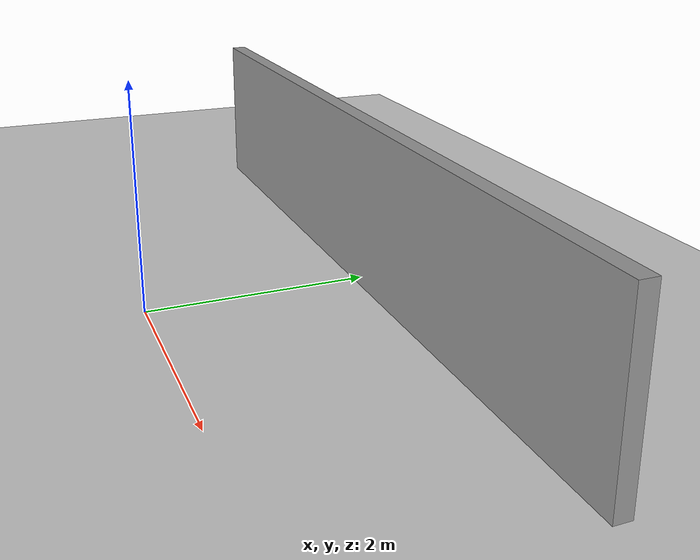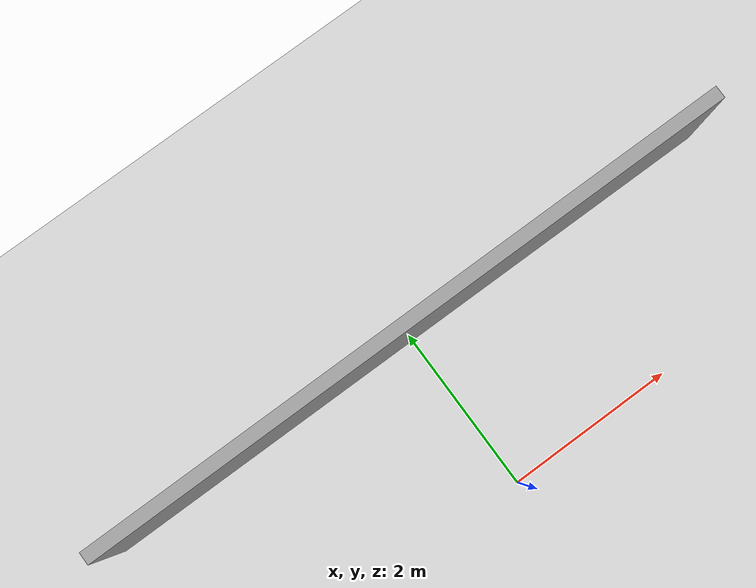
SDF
<sdf version="1.5">
 <world name="default">
  <light name="sun" type="directional">
   <pose>0 0 10 0 -0 0</pose>
   <diffuse>0.8 0.8 0.8 1</diffuse>
   <specular>0.1 0.1 0.1 1</specular>
   <attenuation>
    <range>1000</range>
    <constant>0.9</constant>
    <linear>0.01</linear>
    <quadratic>0.001</quadratic>
   </attenuation>
   <direction>-0.5 0.5 -1</direction>
  </light>
  <model name="ground_plane">
   <static>1</static>
   <link name="link">
    <collision name="collision">
     <geometry><plane><normal>0 0 1</normal><size>100 100</size></plane></geometry>
     <surface><friction><ode><mu>100</mu><mu2>50</mu2></ode></friction></surface>
    </collision>
    <visual name="visual">
     <cast_shadows>0</cast_shadows>
     <geometry><plane><normal>0 0 1</normal><size>100 100</size></plane></geometry>
     <material>
      <script><uri>file://media/materials/scripts/gazebo.material</uri><name>Gazebo/Grey</name></script>
     </material>
    </visual>
    <velocity_decay><linear>0</linear><angular>0</angular></velocity_decay>
   </link>
  </model>
  <physics type="ode">
   <max_step_size>0.001</max_step_size>
   <real_time_factor>1</real_time_factor>
   <real_time_update_rate>1000</real_time_update_rate>
   <gravity>0 0 -9.8</gravity>
   <magnetic_field>5.5645e-06 2.28758e-05 -4.23884e-05</magnetic_field>
  </physics>
  <scene><ambient>0.4 0.4 0.4 1</ambient><background>0.7 0.7 0.7 1</background><shadows>1</shadows></scene>
  <spherical_coordinates>
   <surface_model>EARTH_WGS84</surface_model>
   <latitude_deg>0</latitude_deg>
   <longitude_deg>0</longitude_deg>
   <elevation>0</elevation>
   <heading_deg>0</heading_deg>
  </spherical_coordinates>
  <model name="unit_box_1">
   <static>1</static>
   <pose>9.1e-05 2.00001 0.766115 -2.8e-05 8e-06 -2.7e-05</pose>
   <link name="unit_box_1::link">
    <inertial>
     <mass>1</mass>
     <inertia><ixx>1</ixx><ixy>0</ixy><ixz>0</ixz><iyy>1</iyy><iyz>0</iyz><izz>1</izz></inertia>
    </inertial>
    <collision name="collision"><geometry><box><size>7.71467 0.147739 1.53229</size></box></geometry></collision>
    <visual name="visual">
     <geometry><box><size>7.71467 0.147739 1.53229</size></box></geometry>
     <material>
      <script><uri>file://media/materials/scripts/gazebo.material</uri><name>Gazebo/Grey</name></script>
     </material>
    </visual>
    <velocity_decay><linear>0</linear><angular>0</angular></velocity_decay>
   </link>
   <plugin name="box_info_pub" filename="libBoxInfoPublisher.so"/>
  </model>
 </world>
</sdf>
